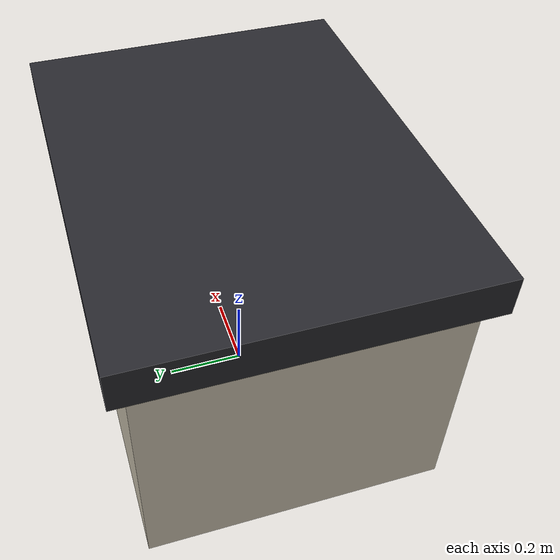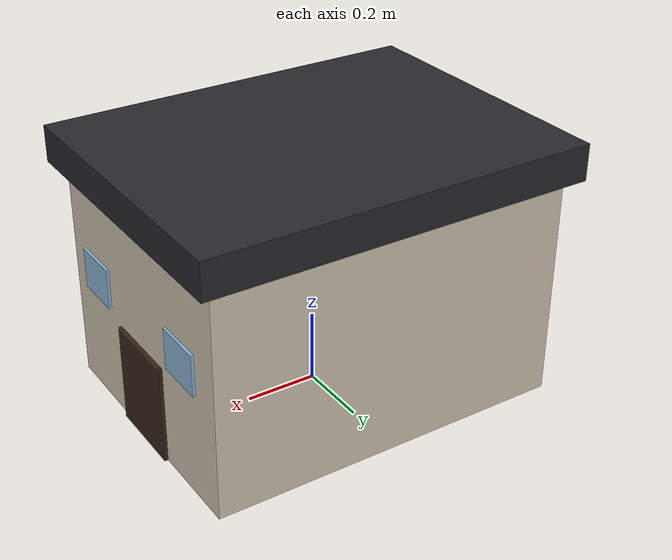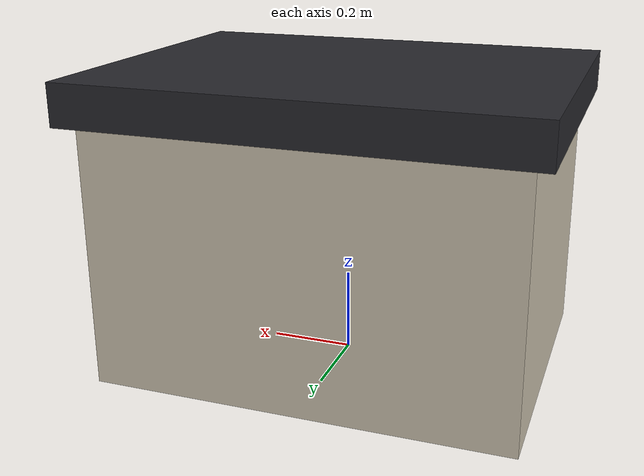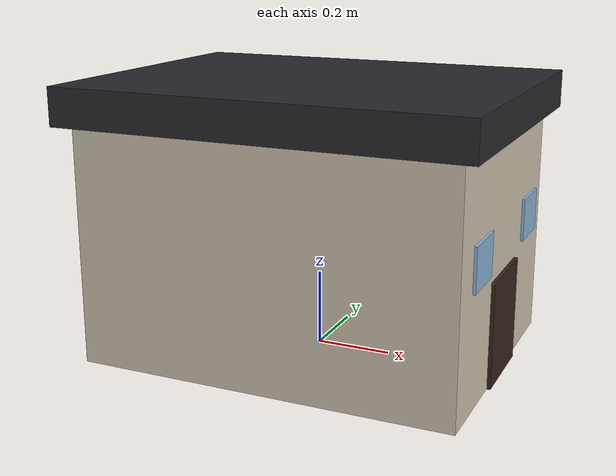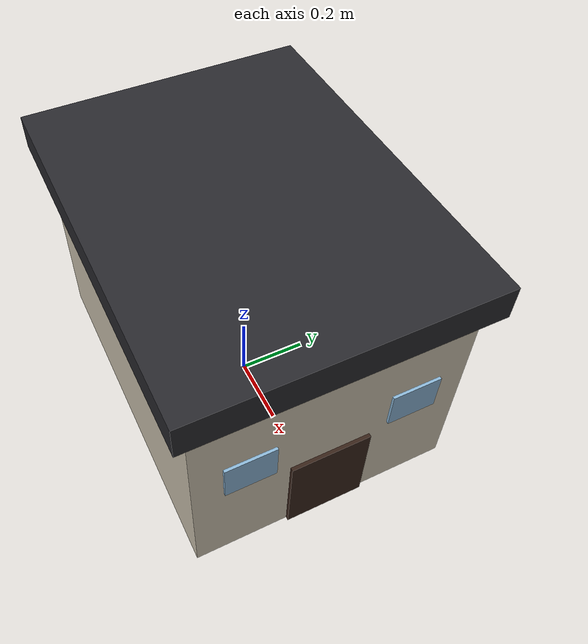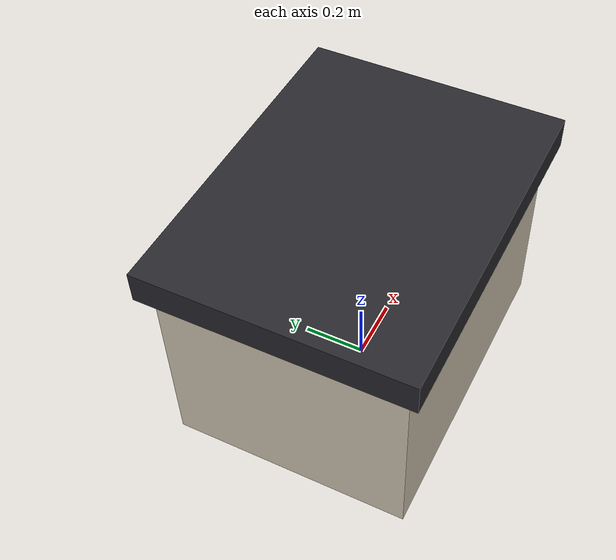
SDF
<sdf version="1.9">
  <model name="lite_house">
    <static>true</static>
    <link name="house_link">
      <collision name="walls_collision">
        <pose>0 0 0.3125 0 0 0</pose>
        <geometry>
          <box><size>1.0 0.75 0.625</size></box>
        </geometry>
      </collision>
      <visual name="walls_visual">
        <pose>0 0 0.3125 0 0 0</pose>
        <geometry>
          <box><size>1.0 0.75 0.625</size></box>
        </geometry>
        <material>
          <ambient>0.82 0.78 0.70 1</ambient>
          <diffuse>0.82 0.78 0.70 1</diffuse>
          <specular>0.04 0.04 0.04 1</specular>
        </material>
      </visual>
      <visual name="roof_visual">
        <pose>0 0 0.675 0 0 0</pose>
        <geometry>
          <box><size>1.075 0.825 0.10</size></box>
        </geometry>
        <material>
          <ambient>0.16 0.16 0.18 1</ambient>
          <diffuse>0.16 0.16 0.18 1</diffuse>
          <specular>0.04 0.04 0.04 1</specular>
        </material>
      </visual>
      <visual name="door_visual">
        <pose>0.505 0 0.1375 0 0 0</pose>
        <geometry>
          <box><size>0.01 0.225 0.275</size></box>
        </geometry>
        <material>
          <ambient>0.22 0.14 0.10 1</ambient>
          <diffuse>0.22 0.14 0.10 1</diffuse>
          <specular>0.02 0.02 0.02 1</specular>
        </material>
      </visual>
      <visual name="window_left_visual">
        <pose>0.5075 -0.225 0.3625 0 0 0</pose>
        <geometry>
          <box><size>0.0075 0.1375 0.1125</size></box>
        </geometry>
        <material>
          <ambient>0.55 0.72 0.85 1</ambient>
          <diffuse>0.55 0.72 0.85 1</diffuse>
          <specular>0.08 0.08 0.08 1</specular>
        </material>
      </visual>
      <visual name="window_right_visual">
        <pose>0.5075 0.225 0.3625 0 0 0</pose>
        <geometry>
          <box><size>0.0075 0.1375 0.1125</size></box>
        </geometry>
        <material>
          <ambient>0.55 0.72 0.85 1</ambient>
          <diffuse>0.55 0.72 0.85 1</diffuse>
          <specular>0.08 0.08 0.08 1</specular>
        </material>
      </visual>
    </link>
  </model>
</sdf>
